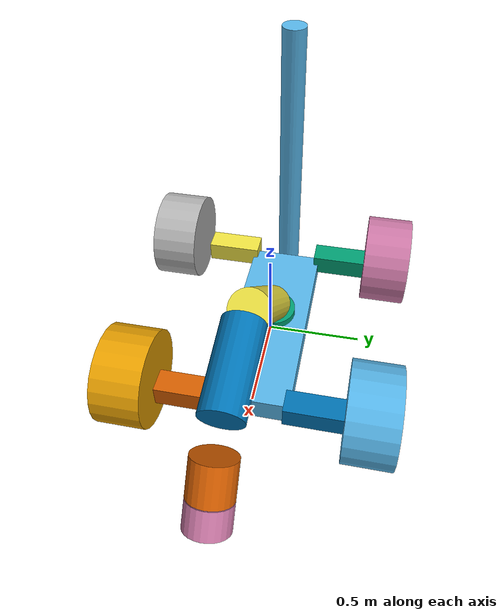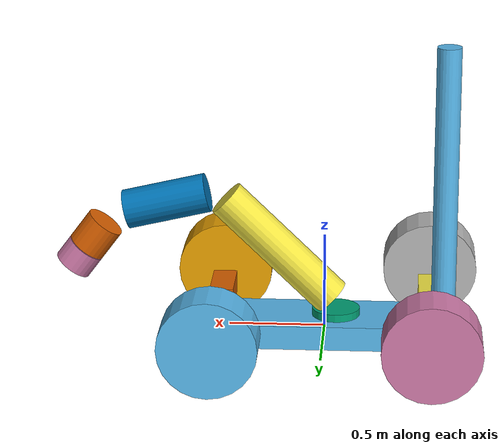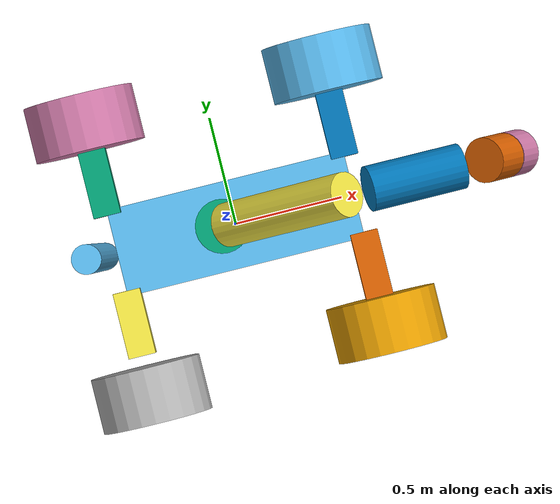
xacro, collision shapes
<?xml version='1.0'?>

<!-- choose a name space and start xacro -->
<robot name="arm_mode" xmlns:xacro="http://www.ros.org/wiki/xacro">

  <!-- Start by including all required xacro files which hold the macros -->
  <xacro:include filename="$(find sim_world)/models/arm_mode/arm_mode.gazebo" />
  <xacro:include filename="$(find sim_world)/models/arm_mode/materials.xacro" />
  <xacro:include filename="$(find sim_world)/models/arm_mode/macros.xacro"    />
  <xacro:include filename="$(find sim_world)/models/arm_mode/parameter.xacro" />
  <xacro:include filename="$(find sim_world)/models/common_models/common_models.xacro" />

  <link name="arm_j1">

    <collision name="collision">
      <origin xyz="0 0 0" rpy="0 0 0"/>
      <geometry>
        <cylinder radius="${j1_r}" length="${j1_l}"/>
      </geometry>
    </collision>

    <visual name="arm_j1_visual">
      <origin xyz="0 0 0" rpy="0 0 0"/>
      <geometry>
        <mesh filename="package://sim_world/meshes/J1v2.dae"/>
      </geometry>
    </visual>

    <inertial>
      <origin xyz="0 0 0" rpy="0 0 0"/>
      <mass value="1"/>
      <inertia
          ixx="1.0" ixy="0.0" ixz="0.0"
          iyy="1.0" iyz="0.0"
          izz="1.0"/>
    </inertial>
  </link>

  <link name="arm_j2">

    <collision name="collision">
      <origin xyz="0 0 ${j2_l/2+0.033401}" rpy="0 0 0"/>
      <geometry>
        <cylinder radius="${j2_r}" length="${j2_l}"/>
      </geometry>
    </collision>

    <visual name="arm_j2_visual">
      <origin xyz="0 0 ${j2_l/2+0.033401}" rpy="0 0 0"/>
      <geometry>
        <mesh filename="package://sim_world/meshes/J2 fixedv2.dae"/>
      </geometry>
    </visual>

    <inertial>
      <origin xyz="0 0 0" rpy="0 0 0"/>
      <mass value="1"/>
      <inertia
          ixx="1.0" ixy="0.0" ixz="0.0"
          iyy="1.0" iyz="0.0"
          izz="1.0"/>
    </inertial>
  </link>

  <link name="arm_j3">

    <collision name="collision">
      <origin xyz="0 0 ${j3_l/2+0.057}" rpy="0 0 0"/>
      <geometry>
        <cylinder radius="${j3_r}" length="${j3_l}"/>
      </geometry>
    </collision>

    <visual name="arm_j3_visual">
      <origin xyz="0 0 ${j3_l/2+0.057}" rpy="0 0 0"/>
      <geometry>
        <mesh filename="package://sim_world/meshes/J3v2.dae"/>
      </geometry>
    </visual>

    <inertial>
      <origin xyz="0 0 0" rpy="0 0 0"/>
      <mass value="1"/>
      <inertia
          ixx="1.0" ixy="0.0" ixz="0.0"
          iyy="1.0" iyz="0.0"
          izz="1.0"/>
    </inertial>
  </link>

  <link name="arm_j4">

    <collision name="collision">
      <origin xyz="0 0 ${j4_l/2+0.07}" rpy="0 0 0"/>
      <geometry>
        <cylinder radius="${j4_r}" length="${j4_l}"/>
      </geometry>
    </collision>

    <visual name="arm_j4_visual">
      <origin xyz="0 0 ${j4_l/2+0.07}" rpy="0 0 0"/>
      <geometry>
        <mesh filename="package://sim_world/meshes/J4redov2.dae"/>
      </geometry>
    </visual>

    <inertial>
      <origin xyz="0 0 0" rpy="0 0 0"/>
      <mass value="1"/>
      <inertia
          ixx="1.0" ixy="0.0" ixz="0.0"
          iyy="1.0" iyz="0.0"
          izz="1.0"/>
    </inertial>
  </link>

  <link name="arm_j5">

    <collision name="collision">
      <origin xyz="0 0 0" rpy="0 0 0"/>
      <geometry>
        <cylinder radius="${j5_r}" length="${j5_l}"/>
      </geometry>
    </collision>

    <visual name="arm_j5_visual">
      <origin xyz="0 0 0" rpy="0 0 0"/>
      <geometry>
        <mesh filename="package://sim_world/meshes/J5.dae"/>
      </geometry>
    </visual>

    <inertial>
      <origin xyz="0 0 0" rpy="0 0 0"/>
      <mass value="1"/>
      <inertia
          ixx="1.0" ixy="0.0" ixz="0.0"
          iyy="1.0" iyz="0.0"
          izz="1.0"/>
    </inertial>
  </link>

  <transmission name="j1_tran">
    <type>transmission_interface/SimpleTransmission</type>
    <joint name="arm_j1">
      <hardwareInterface>EffortJointInterface</hardwareInterface>
    </joint>
    <actuator name="j1_motor">
      <hardwareInterface>EffortJointInterface</hardwareInterface>
      <mechanicalReduction>1</mechanicalReduction>
    </actuator>
  </transmission>

  <transmission name="j2_tran">
    <type>transmission_interface/SimpleTransmission</type>
    <joint name="arm_j2">
      <hardwareInterface>EffortJointInterface</hardwareInterface>
    </joint>
    <actuator name="j2_motor">
      <hardwareInterface>EffortJointInterface</hardwareInterface>
      <mechanicalReduction>1</mechanicalReduction>
    </actuator>
  </transmission>

  <transmission name="j3_tran">
    <type>transmission_interface/SimpleTransmission</type>
    <joint name="arm_j3">
      <hardwareInterface>EffortJointInterface</hardwareInterface>
    </joint>
    <actuator name="j3_motor">
      <hardwareInterface>EffortJointInterface</hardwareInterface>
      <mechanicalReduction>1</mechanicalReduction>
    </actuator>
  </transmission>

  <transmission name="j4_tran">
    <type>transmission_interface/SimpleTransmission</type>
    <joint name="arm_j4">
      <hardwareInterface>EffortJointInterface</hardwareInterface>
    </joint>
    <actuator name="j4_motor">
      <hardwareInterface>EffortJointInterface</hardwareInterface>
      <mechanicalReduction>1</mechanicalReduction>
    </actuator>
  </transmission>

  <!-- Joints -->
  <joint type="revolute" name="chassis_link_arm_j1">
    <origin xyz="${x_chassis/2-0.62} ${-y_chassis/2+0.207} ${z_chassis/2+j1_l/2}" rpy="0 0 0"/>
    <child link="arm_j1"/>
    <parent link="chassis_link"/>
    <axis xyz="0 1 0" rpy="0 0 0"/>
    <!-- velocity here is the max allowed velocity not the acutal velocity-->
    <limit effort="100" velocity="100"/>
    <joint_properties damping="0.0" friction="0.0"/>
  </joint>

  <joint type="revolute" name="arm_j1_arm_j2">
    <origin xyz="0 0 ${j1_l/2+0.033401}" rpy="0 0.8 0"/>
    <child link="arm_j2"/>
    <parent link="arm_j1"/>
    <axis xyz="0 1 0" rpy="0 0 0"/>
    <!-- velocity here is the max allowed velocity not the acutal velocity-->
    <limit effort="100" velocity="100"/>
    <joint_properties damping="0.0" friction="0.0"/>
  </joint>

  <joint type="revolute" name="arm_j2_arm_j3">
    <origin xyz="0 0 ${j2_l+0.033401+0.057}" rpy="0 1.0 0"/>
    <child link="arm_j3"/>
    <parent link="arm_j2"/>
    <axis xyz="0 1 0" rpy="0 0 0"/>
    <!-- velocity here is the max allowed velocity not the acutal velocity-->
    <limit effort="100" velocity="100"/>
    <joint_properties damping="0.0" friction="0.0"/>
  </joint>

  <joint type="revolute" name="arm_j3_arm_j4">
    <origin xyz="0 0 ${j3_l+0.057+0.07}" rpy="0 0.7 0"/>
    <child link="arm_j4"/>
    <parent link="arm_j3"/>
    <axis xyz="0 1 0" rpy="0 0 0"/>
    <!-- velocity here is the max allowed velocity not the acutal velocity-->
    <limit effort="100" velocity="100"/>
    <joint_properties damping="0.0" friction="0.0"/>
  </joint>

  <joint type="revolute" name="arm_j4_arm_j5">
    <origin xyz="0 0 ${j4_l+0.07+0.065}" rpy="0 0 0"/>
    <child link="arm_j5"/>
    <parent link="arm_j4"/>
    <axis xyz="0 1 0" rpy="0 0 0"/>
    <!-- velocity here is the max allowed velocity not the acutal velocity-->
    <limit effort="100" velocity="100"/>
    <joint_properties damping="0.0" friction="0.0"/>
  </joint>

</robot>

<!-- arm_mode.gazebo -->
<robot xmlns:xacro="http://www.ros.org/wiki/xacro">
  <xacro:include filename="$(find sim_world)/models/arm_mode/parameter.xacro" />

</robot>

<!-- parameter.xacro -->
<robot xmlns:xacro="http://www.ros.org/wiki/xacro">

  <!-- Parameters for arm_21, radius [m] and lenght [m] -->
    <xacro:property name="j1_r" value="0.124968" />
    <xacro:property name="j1_l" value="0.040132" />

  <!-- Parameters for arm_j2, radius [m] and lenght -->
  <xacro:property name="j2_r" value="0.1016" />
  <xacro:property name="j2_l" value="0.767842" />

  <!-- Parameters for arm_j3, radius [m] and lenght -->
  <xacro:property name="j3_r" value="0.1016" />
  <xacro:property name="j3_l" value="0.435864" />

  <!-- Parameters for arm_j4, radius [m] and lenght -->
  <xacro:property name="j4_r" value="0.1016" />
  <xacro:property name="j4_l" value="0.17145" />

  <!-- Parameters for arm_j5, radius [m] and lenght -->
  <xacro:property name="j5_r" value="0.1016" />
  <xacro:property name="j5_l" value="0.122936" />
</robot>

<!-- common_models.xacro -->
<!-- choose a name space and start xacro -->
<robot name="common_models" xmlns:xacro="http://www.ros.org/wiki/xacro">

  <!-- Start by including all required xacro files which hold the macros -->
  <xacro:include filename="$(find sim_world)/models/common_models/common_models.gazebo" />
  <xacro:include filename="$(find sim_world)/models/common_models/materials.xacro" />
  <xacro:include filename="$(find sim_world)/models/common_models/macros.xacro"    />
  <xacro:include filename="$(find sim_world)/models/common_models/parameter.xacro" />

 <!-- Create a dummy link as base link -->
  <link name='base_link'>
    <pose>0 0 0 0 0 0</pose>
  </link>
  <joint type="fixed" name="base_link_to_chassis">
    <child link="chassis_link"/>
    <parent link="base_link"/>
  </joint>

  <!-- Define the chassis of the differential drive robot, which is our base -->
  <link name='chassis_link'>
    <pose>0 0 0 0 0 0</pose>
    <!-- Define inertial system for the chassis -->
    <inertial>
      <mass value="${m_chassis}"/>
      <xacro:box_inertia m="${m_chassis}" x="${x_chassis}" y="${y_chassis}" z="${z_chassis}"/>
    </inertial>
    <!-- Define collision sorrounding box -->
    <collision name='collision'>
      <origin xyz="0 0 0" rpy=" 0 0 0"/>
      <geometry>
        <box size="${x_chassis} ${y_chassis} ${z_chassis}"/>
      </geometry>
    </collision>
    <!-- Define visualization structure -->
    <visual name='base_link_visual'>
	  <origin xyz="0 0 0" rpy=" 0 0 0"/>
      <geometry>
        <mesh filename="package://sim_world/meshes/chassis-w-baseplate.dae"/>
      </geometry>
    </visual>

    <!-- Add the caster wheel! Here we simply assume complete slippage, thus we do not require that it rotates! -->

    <!-- Add antenna to the rover -->
    <collision name="antenna">
      <origin xyz="${-x_chassis/2-r_antenna} 0 ${l_antenna/2-z_chassis/2}" rpy="0 0 0"/>
      <geometry>
        <cylinder radius="${r_antenna}" length="${l_antenna}"/>
      </geometry>
    </collision>

    <visual name="antenna_visual">
      <origin xyz="${-x_chassis/2-r_antenna} 0 ${l_antenna/2-z_chassis/2}" rpy="0 0 0"/>
      <geometry>
        <cylinder radius="${r_antenna}" length="${l_antenna}"/>
      </geometry>
    </visual>

  </link>

  <!-- Add legs for the robot -->
  <link name="leg_rl">
    <inertial>
      <mass value="${m_leg}"/>
      <xacro:box_inertia m="${m_leg}" x="${l_leg}" y="${w_leg}" z="${h_leg}"/>
    </inertial>
    <collision name="collision">
      <origin xyz="0 0 0" rpy="0 0 ${pi/2}"/>
      <geometry>
        <box size="${l_leg} ${w_leg} ${h_leg}"/>
      </geometry>
    </collision>
    <visual name="leg_rl_visual">
      <origin xyz="0 0 0" rpy="0 0 ${pi/2}"/>
      <geometry>
        <mesh filename="package://sim_world/meshes/tr_leg.dae"/>
      </geometry>
    </visual>
  </link>

  <link name="leg_rr">
    <inertial>
      <mass value="${m_leg}"/>
      <xacro:box_inertia m="${m_leg}" x="${l_leg}" y="${w_leg}" z="${h_leg}"/>
    </inertial>
    <collision name="collision">
      <origin xyz="0 0 0" rpy="0 0 ${pi/2}"/>
      <geometry>
        <box size="${l_leg} ${w_leg} ${h_leg}"/>
      </geometry>
    </collision>
    <visual name="leg_rr_visual">
      <origin xyz="0 0 0" rpy="0 0 ${pi/2}"/>
      <geometry>
        <mesh filename="package://sim_world/meshes/tr_leg.dae"/>
      </geometry>
    </visual>
  </link>

  <link name="leg_fl">
    <inertial>
      <mass value="${m_leg}"/>
      <xacro:box_inertia m="${m_leg}" x="${l_leg}" y="${w_leg}" z="${h_leg}"/>
    </inertial>
    <collision name="collision">
      <origin xyz="0 0 0" rpy="0 0 ${pi/2}"/>
      <geometry>
        <box size="${l_leg} ${w_leg} ${h_leg}"/>
      </geometry>
    </collision>
    <visual name="leg_fl_visual">
      <origin xyz="0 0 0" rpy="0 0 ${pi/2}"/>
      <geometry>
        <mesh filename="package://sim_world/meshes/Control_armsFL.dae"/>
      </geometry>
    </visual>
  </link>

  <link name="leg_fr">
    <inertial>
      <mass value="${m_leg}"/>
      <xacro:box_inertia m="${m_leg}" x="${l_leg}" y="${w_leg}" z="${h_leg}"/>
    </inertial>
    <collision name="collision">
      <origin xyz="0 0 0" rpy="0 0 ${pi/2}"/>
      <geometry>
        <box size="${l_leg} ${w_leg} ${h_leg}"/>
      </geometry>
    </collision>
    <visual name="leg_fr_visual">
      <origin xyz="0 0 0" rpy="0 0 ${pi/2}"/>
      <geometry>
        <mesh filename="package://sim_world/meshes/Control_armsFRv2.dae"/>
      </geometry>
    </visual>
  </link>

  <!-- Add the wheels for the robot -->
  <link name="wheel_rl">
    <collision name="collision">
      <origin xyz="0 0 0" rpy="0 ${pi/2} ${pi/2}"/>
      <geometry>
        <cylinder radius="${r_wheel}" length="${h_wheel}"/>
      </geometry>
      <surface>
        <friction>
          <ode>
            <mu>1.0</mu>
            <mu2>1.0</mu2>
            <slip1>0.0</slip1>
            <slip2>0.0</slip2>
          </ode>
        </friction>
      </surface>
    </collision>
    <visual name="wheel_rl_visual">
      <origin xyz="0 0 0" rpy="0 ${pi/2} ${pi/2}"/>
      <geometry>
        <mesh filename="package://sim_world/meshes/tr_wheel_left.dae"/>
      </geometry>
    </visual>
    <inertial>
      <origin xyz="0 0 0" rpy="0 ${pi/2} ${pi/2}"/>
      <mass value="${m_wheel}"/>
      <cylinder_inertia m="${m_wheel}" r="${r_wheel}" h="${h_wheel}"/>
      <xacro:cylinder_inertia m="${m_wheel}" r="${r_wheel}" h="${h_wheel}"/>
    </inertial>
  </link>

  <link name="wheel_rr">
    <collision name="collision">
      <origin xyz="0 0 0" rpy="0 ${pi/2} ${pi/2}"/>
      <geometry>
        <cylinder radius="${r_wheel}" length="${h_wheel}"/>
      </geometry>
      <surface>
        <friction>
          <ode>
            <mu>1.0</mu>
            <mu2>1.0</mu2>
            <slip1>0.0</slip1>
            <slip2>0.0</slip2>
          </ode>
        </friction>
      </surface>
    </collision>
    <visual name="wheel_rr_visual">
      <origin xyz="0 0 0" rpy="0 ${pi/2} ${pi/2}"/>
      <geometry>
        <mesh filename="package://sim_world/meshes/tr_wheel_right.dae"/>
      </geometry>
    </visual>
    <inertial>
      <origin xyz="0 0 0" rpy="0 ${pi/2} ${pi/2}"/>
      <mass value="${m_wheel}"/>
      <cylinder_inertia m="${m_wheel}" r="${r_wheel}" h="${h_wheel}"/>
      <xacro:cylinder_inertia m="${m_wheel}" r="${r_wheel}" h="${h_wheel}"/>
    </inertial>
  </link>

  <link name="wheel_fr">
    <collision name="collision">
      <origin xyz="0 0 0" rpy="0 ${pi/2} ${pi/2}"/>
      <geometry>
        <cylinder radius="${r_wheel}" length="${h_wheel}"/>
      </geometry>
      <surface>
        <friction>
          <ode>
            <mu>1.0</mu>
            <mu2>1.0</mu2>
            <slip1>0.0</slip1>
            <slip2>0.0</slip2>
          </ode>
        </friction>
      </surface>
    </collision>
    <visual name="wheel_fr_visual">
      <origin xyz="0 0 0" rpy="0 ${pi/2} ${pi/2}"/>
      <geometry>
        <mesh filename="package://sim_world/meshes/tr_wheel_right.dae"/>
      </geometry>
    </visual>
    <inertial>
      <origin xyz="0 0 0" rpy="0 ${pi/2} ${pi/2}"/>
      <mass value="${m_wheel}"/>
      <cylinder_inertia m="${m_wheel}" r="${r_wheel}" h="${h_wheel}"/>
      <xacro:cylinder_inertia m="${m_wheel}" r="${r_wheel}" h="${h_wheel}"/>
    </inertial>
  </link>

  <link name="wheel_fl">
    <collision name="collision">
      <origin xyz="0 0 0" rpy="0 ${pi/2} ${pi/2}"/>
      <geometry>
        <cylinder radius="${r_wheel}" length="${h_wheel}"/>
      </geometry>
      <surface>
        <friction>
          <ode>
            <mu>1.0</mu>
            <mu2>1.0</mu2>
            <slip1>0.0</slip1>
            <slip2>0.0</slip2>
          </ode>
        </friction>
      </surface>
    </collision>
    <visual name="wheel_fl_visual">
      <origin xyz="0 0 0" rpy="0 ${pi/2} ${pi/2}"/>
      <geometry>
        <mesh filename="package://sim_world/meshes/tr_wheel_left.dae"/>
      </geometry>
    </visual>
    <inertial>
      <origin xyz="0 0 0" rpy="0 ${pi/2} ${pi/2}"/>
      <mass value="${m_wheel}"/>
      <cylinder_inertia m="${m_wheel}" r="${r_wheel}" h="${h_wheel}"/>
      <xacro:cylinder_inertia m="${m_wheel}" r="${r_wheel}" h="${h_wheel}"/>
    </inertial>
  </link>

  <!-- Set joints for the wheels which can be controlled over ROS -->
  <!-- it is continuous since it is a wheel-->
  <joint type="continuous" name="leg_rl_joint_wheel_rl">
    <origin xyz="0 ${l_leg/2+h_wheel/2} ${r_wheel/2-z_chassis/2}" rpy="0 0 0"/>
    <child link="wheel_rl"/>
    <parent link="leg_rl"/>
    <axis xyz="0 1 0" rpy="0 0 0"/>
    <!-- velocity here is the max allowed velocity not the acutal velocity-->
    <limit effort="100" velocity="100"/>
    <joint_properties damping="0.0" friction="0.0"/>
  </joint>
  <joint type="continuous" name="leg_rr_joint_wheel_rr">
    <origin xyz="0 ${-y_chassis/2-h_wheel/2} ${r_wheel/2-z_chassis/2}" rpy="0 0 0"/>
    <child link="wheel_rr"/>
    <parent link="leg_rr"/>
    <axis xyz="0 1 0" rpy="0 0 0"/>
    <limit effort="100" velocity="100"/>
    <joint_properties damping="0.0" friction="0.0"/>
  </joint>
  <joint type="continuous" name="leg_fr_joint_wheel_fr">
    <origin xyz="0 ${-l_leg/2-h_wheel/2} ${r_wheel/2-z_chassis/2}" rpy="0 0 0"/>
    <child link="wheel_fr"/>
    <parent link="leg_fr"/>
    <axis xyz="0 1 0" rpy="0 0 0"/>
    <limit effort="100" velocity="100"/>
    <joint_properties damping="0.0" friction="0.0"/>
  </joint>
  <joint type="continuous" name="leg_fl_joint_wheel_fl">
    <origin xyz="0 ${l_leg/2+h_wheel/2} ${r_wheel/2-z_chassis/2}" rpy="0 0 0"/>
    <child link="wheel_fl"/>
    <parent link="leg_fl"/>
    <axis xyz="0 1 0" rpy="0 0 0"/>
    <limit effort="100" velocity="100"/>
    <joint_properties damping="0.0" friction="0.0"/>
  </joint>

   <joint type="revolute" name="chassis_link_joint_leg_rl">
    <origin xyz="${-wheel_dist_center} ${y_chassis/2+h_wheel/2} ${r_wheel/2-z_chassis/2}" rpy="0 0 0"/>
    <child link="leg_rl"/>
    <parent link="chassis_link"/>
    <axis xyz="0 1 0" rpy="0 0 0"/>
    <limit effort="100" velocity="100"/>
    <joint_properties damping="0.0" friction="0.0"/>
  </joint>
  <joint type="revolute" name="chassis_link_joint_leg_rr">
    <origin xyz="${-wheel_dist_center} ${-y_chassis/2-h_wheel/2} ${r_wheel/2-z_chassis/2}" rpy="0 0 0"/>
    <child link="leg_rr"/>
    <parent link="chassis_link"/>
    <axis xyz="0 1 0" rpy="0 0 0"/>
    <limit effort="100" velocity="100"/>
    <joint_properties damping="0.0" friction="0.0"/>
  </joint>
  <joint type="revolute" name="chassis_link_joint_leg_fl">
    <origin xyz="${wheel_dist_center} ${y_chassis/2+h_wheel/2} ${r_wheel/2-z_chassis/2}" rpy="0 0 0"/>
    <child link="leg_fl"/>
    <parent link="chassis_link"/>
    <axis xyz="0 1 0" rpy="0 0 0"/>
    <limit effort="100" velocity="100"/>
    <joint_properties damping="0.0" friction="0.0"/>
  </joint>
  <joint type="revolute" name="chassis_link_joint_leg_fr">
    <origin xyz="${wheel_dist_center} ${-y_chassis/2-h_wheel/2} ${r_wheel/2-z_chassis/2}" rpy="0 0 0"/>
    <child link="leg_fr"/>
    <parent link="chassis_link"/>
    <axis xyz="0 1 0" rpy="0 0 0"/>
    <limit effort="100" velocity="100"/>
    <joint_properties damping="0.0" friction="0.0"/>
  </joint>
</robot>

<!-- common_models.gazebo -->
<robot xmlns:xacro="http://www.ros.org/wiki/xacro">
  <xacro:include filename="$(find sim_world)/models/common_models/parameter.xacro" />

  <!-- TODO: Add same update rates over parameter setting and define all parameters in config -->
  <!-- Differential Drive controller from Gazebo, TODO: Add noise by adapting the plugin -->
  <gazebo>
    <plugin name="differential_drive_controller" filename="libgazebo_ros_diff_drive.so">
      <alwaysOn>true</alwaysOn>
      <!-- the buad rate is 20 hz-->
      <updateRate>20</updateRate>
      <leftJoint>leg_rl_joint_wheel_rl</leftJoint>
      <rightJoint>leg_rr_joint_wheel_rr</rightJoint>
      <wheelSeparation>${h_wheel+l_leg*2+y_chassis}</wheelSeparation>
      <wheelDiameter>${r_wheel*2}</wheelDiameter>
      <wheelTorque>${torque_wheel}</wheelTorque>
      <commandTopic>/cmd_vel</commandTopic>
      <odometryTopic>odom</odometryTopic>
      <odometryFrame>odom_link</odometryFrame>
      <robotBaseFrame>base_link</robotBaseFrame>
      <legacyMode>false</legacyMode>
    </plugin>
  </gazebo>

  <!-- Paint the robot -->
  <gazebo reference="base_link">
    <material>Gazebo/Orange</material>
  </gazebo>
</robot>

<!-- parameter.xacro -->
<robot xmlns:xacro="http://www.ros.org/wiki/xacro">

  <!-- Define parameter for the differential drive robot -->
  <!-- Parameter for the chassis, size [m] and mass [kg] -->
  <xacro:property name="x_chassis" value="1.1176" />
  <xacro:property name="y_chassis" value="0.4064" />
  <xacro:property name="z_chassis" value="0.127" />
  <xacro:property name="m_chassis" value="10.0" />

  <!-- Parameter for the wheels, radius [m], height [m], mass [kg], torque [Nm], wheelbase [m] -->
  <xacro:property name="r_wheel" value="0.254"/>
  <xacro:property name="h_wheel" value="0.254" />
  <xacro:property name="m_wheel" value="3.0" />
  <xacro:property name="torque_wheel" value="10" />
  <xacro:property name="L_wheel" value="0.1788" />
  <xacro:property name="wheel_dist_center" value="0.5588" />

  <!-- Parameter for the legs, length [m], width [m], height [m], mass [kg]-->
  <xacro:property name="l_leg" value="0.3048" />
  <xacro:property name="w_leg" value="0.1270" />
  <xacro:property name="h_leg" value="0.1143" />
  <xacro:property name="m_leg" value="2.0" />

  <!-- Parameter for the antenna, radius [m], length [m] -->
  <xacro:property name="r_antenna" value="0.0635" />
  <xacro:property name="l_antenna" value="1.5748" />

</robot>
